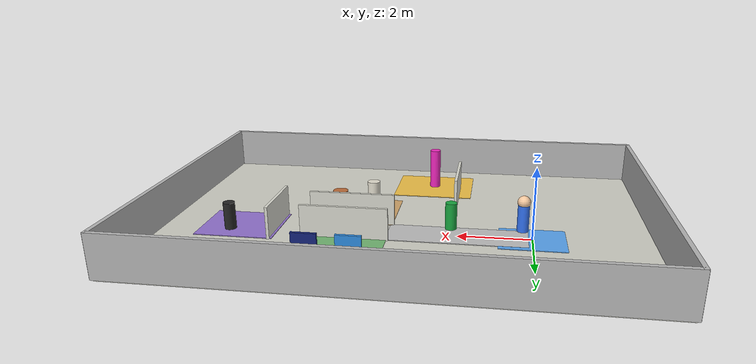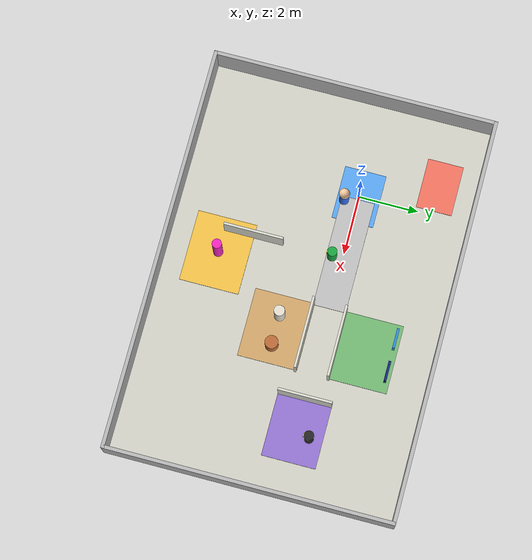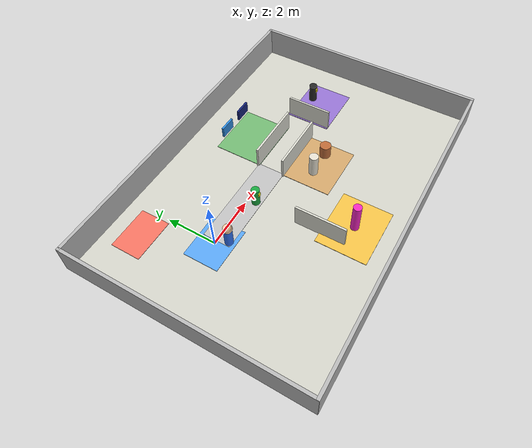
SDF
<?xml version="1.0" ?>
<sdf version="1.6">
  <world name="semantic_museum_world">
    <gravity>0 0 -9.8</gravity>
    <magnetic_field>6e-06 2.3e-05 -4.2e-05</magnetic_field>
    <atmosphere type="adiabatic"/>

    <plugin name="gazebo_ros_state" filename="libgazebo_ros_state.so">
      <ros>
        <namespace>/gazebo</namespace>
      </ros>
      <update_rate>1.0</update_rate>
    </plugin>

    <scene>
      <ambient>0.55 0.55 0.55 1</ambient>
      <background>0.78 0.82 0.86 1</background>
      <shadows>false</shadows>
    </scene>

    <light name="museum_overhead_light" type="directional">
      <pose>0 0 8 0 0 0</pose>
      <diffuse>0.9 0.9 0.82 1</diffuse>
      <specular>0.2 0.2 0.2 1</specular>
      <direction>-0.4 0.2 -1</direction>
    </light>

    <model name="museum_floor">
      <static>true</static>
      <pose>3.5 -1.0 -0.025 0 0 0</pose>
      <link name="floor_link">
        <collision name="collision">
          <geometry><box><size>13.5 9.5 0.05</size></box></geometry>
        </collision>
        <visual name="visual">
          <geometry><box><size>13.5 9.5 0.05</size></box></geometry>
          <material>
            <ambient>0.82 0.82 0.78 1</ambient>
            <diffuse>0.82 0.82 0.78 1</diffuse>
          </material>
        </visual>
      </link>
    </model>

    <model name="outer_walls">
      <static>true</static>
      <link name="walls">
        <collision name="north_wall_collision">
          <pose>3.5 3.75 0.6 0 0 0</pose>
          <geometry><box><size>13.6 0.12 1.2</size></box></geometry>
        </collision>
        <visual name="north_wall_visual">
          <pose>3.5 3.75 0.6 0 0 0</pose>
          <geometry><box><size>13.6 0.12 1.2</size></box></geometry>
          <material><ambient>0.72 0.72 0.72 1</ambient><diffuse>0.72 0.72 0.72 1</diffuse></material>
        </visual>
        <collision name="south_wall_collision">
          <pose>3.5 -5.75 0.6 0 0 0</pose>
          <geometry><box><size>13.6 0.12 1.2</size></box></geometry>
        </collision>
        <visual name="south_wall_visual">
          <pose>3.5 -5.75 0.6 0 0 0</pose>
          <geometry><box><size>13.6 0.12 1.2</size></box></geometry>
          <material><ambient>0.72 0.72 0.72 1</ambient><diffuse>0.72 0.72 0.72 1</diffuse></material>
        </visual>
        <collision name="west_wall_collision">
          <pose>-3.25 -1.0 0.6 0 0 0</pose>
          <geometry><box><size>0.12 9.6 1.2</size></box></geometry>
        </collision>
        <visual name="west_wall_visual">
          <pose>-3.25 -1.0 0.6 0 0 0</pose>
          <geometry><box><size>0.12 9.6 1.2</size></box></geometry>
          <material><ambient>0.72 0.72 0.72 1</ambient><diffuse>0.72 0.72 0.72 1</diffuse></material>
        </visual>
        <collision name="east_wall_collision">
          <pose>10.25 -1.0 0.6 0 0 0</pose>
          <geometry><box><size>0.12 9.6 1.2</size></box></geometry>
        </collision>
        <visual name="east_wall_visual">
          <pose>10.25 -1.0 0.6 0 0 0</pose>
          <geometry><box><size>0.12 9.6 1.2</size></box></geometry>
          <material><ambient>0.72 0.72 0.72 1</ambient><diffuse>0.72 0.72 0.72 1</diffuse></material>
        </visual>
      </link>
    </model>

    <model name="semantic_room_zones">
      <static>true</static>
      <link name="room_floor_colors">
        <visual name="entrance_zone">
          <pose>0 0 0.01 0 0 0</pose>
          <geometry><box><size>1.8 1.4 0.02</size></box></geometry>
          <material><ambient>0.35 0.65 0.95 1</ambient><diffuse>0.35 0.65 0.95 1</diffuse></material>
        </visual>
        <visual name="main_corridor_zone">
          <pose>2 0 0.012 0 0 0</pose>
          <geometry><box><size>3.8 1.1 0.02</size></box></geometry>
          <material><ambient>0.75 0.75 0.75 1</ambient><diffuse>0.75 0.75 0.75 1</diffuse></material>
        </visual>
        <visual name="impressionism_hall_zone">
          <pose>5 1.5 0.014 0 0 0</pose>
          <geometry><box><size>2.3 2.0 0.02</size></box></geometry>
          <material><ambient>0.45 0.72 0.45 1</ambient><diffuse>0.45 0.72 0.45 1</diffuse></material>
        </visual>
        <visual name="ancient_art_hall_zone">
          <pose>5 -1.5 0.016 0 0 0</pose>
          <geometry><box><size>2.3 2.0 0.02</size></box></geometry>
          <material><ambient>0.82 0.65 0.42 1</ambient><diffuse>0.82 0.65 0.42 1</diffuse></material>
        </visual>
        <visual name="kids_hall_zone">
          <pose>3 -4 0.018 0 0 0</pose>
          <geometry><box><size>2.4 2.0 0.02</size></box></geometry>
          <material><ambient>0.95 0.76 0.28 1</ambient><diffuse>0.95 0.76 0.28 1</diffuse></material>
        </visual>
        <visual name="temporary_exhibition_zone">
          <pose>8 0 0.02 0 0 0</pose>
          <geometry><box><size>2.2 1.8 0.02</size></box></geometry>
          <material><ambient>0.58 0.45 0.82 1</ambient><diffuse>0.58 0.45 0.82 1</diffuse></material>
        </visual>
        <visual name="exit_zone">
          <pose>-1 2.5 0.022 0 0 0</pose>
          <geometry><box><size>1.7 1.2 0.02</size></box></geometry>
          <material><ambient>0.95 0.45 0.38 1</ambient><diffuse>0.95 0.45 0.38 1</diffuse></material>
        </visual>
      </link>
    </model>

    <model name="lightweight_room_partitions">
      <static>true</static>
      <link name="partitions">
        <visual name="impressionism_partition">
          <pose>5 0.55 0.45 0 0 0</pose>
          <geometry><box><size>2.4 0.08 0.9</size></box></geometry>
          <material><ambient>0.86 0.86 0.82 1</ambient><diffuse>0.86 0.86 0.82 1</diffuse></material>
        </visual>
        <collision name="impressionism_partition_collision">
          <pose>5 0.55 0.45 0 0 0</pose>
          <geometry><box><size>2.4 0.08 0.9</size></box></geometry>
        </collision>
        <visual name="ancient_partition">
          <pose>5 -0.55 0.45 0 0 0</pose>
          <geometry><box><size>2.4 0.08 0.9</size></box></geometry>
          <material><ambient>0.86 0.86 0.82 1</ambient><diffuse>0.86 0.86 0.82 1</diffuse></material>
        </visual>
        <collision name="ancient_partition_collision">
          <pose>5 -0.55 0.45 0 0 0</pose>
          <geometry><box><size>2.4 0.08 0.9</size></box></geometry>
        </collision>
        <visual name="kids_partition">
          <pose>2.2 -3.0 0.45 0 0 1.5708</pose>
          <geometry><box><size>2.0 0.08 0.9</size></box></geometry>
          <material><ambient>0.86 0.86 0.82 1</ambient><diffuse>0.86 0.86 0.82 1</diffuse></material>
        </visual>
        <collision name="kids_partition_collision">
          <pose>2.2 -3.0 0.45 0 0 1.5708</pose>
          <geometry><box><size>2.0 0.08 0.9</size></box></geometry>
        </collision>
        <visual name="temporary_partition">
          <pose>7.0 0 0.45 0 0 1.5708</pose>
          <geometry><box><size>1.8 0.08 0.9</size></box></geometry>
          <material><ambient>0.86 0.86 0.82 1</ambient><diffuse>0.86 0.86 0.82 1</diffuse></material>
        </visual>
        <collision name="temporary_partition_collision">
          <pose>7.0 0 0.45 0 0 1.5708</pose>
          <geometry><box><size>1.8 0.08 0.9</size></box></geometry>
        </collision>
      </link>
    </model>

    <model name="museum_artwork_markers">
      <static>true</static>
      <link name="artworks">
        <visual name="monet_water_lilies_plaque">
          <pose>4.45 2.35 0.65 0 0 0</pose>
          <geometry><box><size>0.65 0.08 0.45</size></box></geometry>
          <material><ambient>0.18 0.55 0.88 1</ambient><diffuse>0.18 0.55 0.88 1</diffuse></material>
        </visual>
        <visual name="van_gogh_starry_night_plaque">
          <pose>5.55 2.35 0.65 0 0 0</pose>
          <geometry><box><size>0.65 0.08 0.45</size></box></geometry>
          <material><ambient>0.08 0.14 0.48 1</ambient><diffuse>0.08 0.14 0.48 1</diffuse></material>
        </visual>
        <visual name="roman_statue_marker">
          <pose>4.55 -1.5 0.5 0 0 0</pose>
          <geometry><cylinder><radius>0.18</radius><length>0.9</length></cylinder></geometry>
          <material><ambient>0.9 0.88 0.82 1</ambient><diffuse>0.9 0.88 0.82 1</diffuse></material>
        </visual>
        <visual name="egyptian_vase_marker">
          <pose>5.55 -1.5 0.35 0 0 0</pose>
          <geometry><cylinder><radius>0.22</radius><length>0.55</length></cylinder></geometry>
          <material><ambient>0.74 0.42 0.22 1</ambient><diffuse>0.74 0.42 0.22 1</diffuse></material>
        </visual>
        <visual name="interactive_light_installation_column">
          <pose>3 -4 0.65 0 0 0</pose>
          <geometry><cylinder><radius>0.16</radius><length>1.2</length></cylinder></geometry>
          <material><ambient>0.95 0.15 0.75 1</ambient><diffuse>0.95 0.15 0.75 1</diffuse></material>
        </visual>
      </link>
    </model>

    <model name="visitor_marker">
      <static>true</static>
      <pose>0.25 -0.45 0 0 0 0</pose>
      <link name="visitor_body">
        <visual name="body">
          <pose>0 0 0.45 0 0 0</pose>
          <geometry><cylinder><radius>0.16</radius><length>0.75</length></cylinder></geometry>
          <material><ambient>0.2 0.45 0.95 1</ambient><diffuse>0.2 0.45 0.95 1</diffuse></material>
        </visual>
        <visual name="head">
          <pose>0 0 0.9 0 0 0</pose>
          <geometry><sphere><radius>0.18</radius></sphere></geometry>
          <material><ambient>0.95 0.78 0.62 1</ambient><diffuse>0.95 0.78 0.62 1</diffuse></material>
        </visual>
      </link>
    </model>

    <model name="guide_marker">
      <static>true</static>
      <pose>2.2 -0.35 0 0 0 0</pose>
      <link name="guide_body">
        <visual name="body">
          <pose>0 0 0.45 0 0 0</pose>
          <geometry><cylinder><radius>0.16</radius><length>0.75</length></cylinder></geometry>
          <material><ambient>0.1 0.65 0.25 1</ambient><diffuse>0.1 0.65 0.25 1</diffuse></material>
        </visual>
        <visual name="badge">
          <pose>0.0 -0.17 0.62 0 0 0</pose>
          <geometry><box><size>0.12 0.03 0.16</size></box></geometry>
          <material><ambient>1.0 1.0 0.15 1</ambient><diffuse>1.0 1.0 0.15 1</diffuse></material>
        </visual>
      </link>
    </model>

    <model name="staff_marker">
      <static>true</static>
      <pose>8.2 0.45 0 0 0 0</pose>
      <link name="staff_body">
        <visual name="body">
          <pose>0 0 0.45 0 0 0</pose>
          <geometry><cylinder><radius>0.16</radius><length>0.75</length></cylinder></geometry>
          <material><ambient>0.15 0.15 0.15 1</ambient><diffuse>0.15 0.15 0.15 1</diffuse></material>
        </visual>
        <visual name="badge">
          <pose>0.0 -0.17 0.62 0 0 0</pose>
          <geometry><box><size>0.12 0.03 0.16</size></box></geometry>
          <material><ambient>1.0 0.9 0.1 1</ambient><diffuse>1.0 0.9 0.1 1</diffuse></material>
        </visual>
      </link>
    </model>
  </world>
</sdf>
